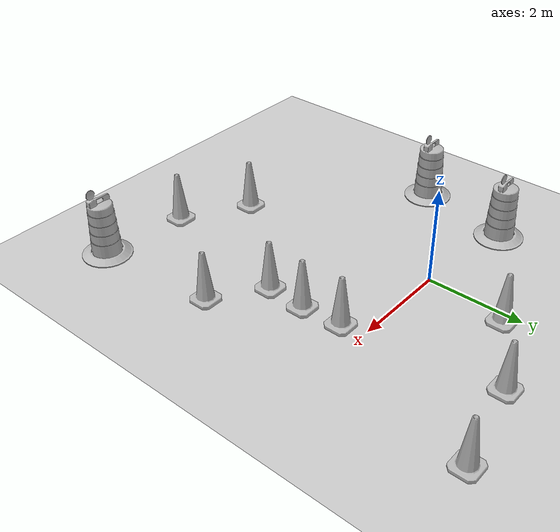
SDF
<sdf version="1.7">
 <world name="default">
  <light name="sun" type="directional">
   <pose>0 0 10 0 -0 0</pose>
   <diffuse>0.8 0.8 0.8 1</diffuse>
   <specular>0.2 0.2 0.2 1</specular>
   <attenuation>
    <range>1000</range>
    <constant>0.9</constant>
    <linear>0.01</linear>
    <quadratic>0.001</quadratic>
   </attenuation>
   <direction>-0.5 0.1 -0.9</direction>
   <spot><inner_angle>0</inner_angle><outer_angle>0</outer_angle><falloff>0</falloff></spot>
  </light>
  <model name="ground_plane">
   <static>1</static>
   <link name="link">
    <collision name="collision">
     <geometry><plane><normal>0 0 1</normal><size>100 100</size></plane></geometry>
     <surface><friction><ode><mu>100</mu><mu2>50</mu2></ode></friction></surface>
    </collision>
    <visual name="visual">
     <cast_shadows>0</cast_shadows>
     <geometry><plane><normal>0 0 1</normal><size>100 100</size></plane></geometry>
     <material>
      <script><uri>file://media/materials/scripts/gazebo.material</uri><name>Gazebo/Grey</name></script>
     </material>
    </visual>
   </link>
  </model>
  <gravity>0 0 -9.8</gravity>
  <magnetic_field>6e-06 2.3e-05 -4.2e-05</magnetic_field>
  <atmosphere type="adiabatic"/>
  <physics type="ode">
   <max_step_size>0.001</max_step_size>
   <real_time_factor>1</real_time_factor>
   <real_time_update_rate>1000</real_time_update_rate>
  </physics>
  <scene><ambient>0.4 0.4 0.4 1</ambient><background>0.7 0.7 0.7 1</background><shadows>1</shadows></scene>
  <audio><device>default</device></audio>
  <spherical_coordinates>
   <surface_model>EARTH_WGS84</surface_model>
   <latitude_deg>0</latitude_deg>
   <longitude_deg>0</longitude_deg>
   <elevation>0</elevation>
   <heading_deg>0</heading_deg>
  </spherical_coordinates>
  <model name="Construction Cone">
   <link name="link">
    <collision name="collision">
     <geometry>
      <mesh><scale>10 10 10</scale><uri>model://construction_cone/meshes/construction_cone.dae</uri></mesh>
     </geometry>
    </collision>
    <visual name="visual">
     <geometry>
      <mesh><scale>10 10 10</scale><uri>model://construction_cone/meshes/construction_cone.dae</uri></mesh>
     </geometry>
    </visual>
    <inertial>
     <inertia><ixx>1</ixx><ixy>0</ixy><ixz>0</ixz><iyy>1</iyy><iyz>0</iyz><izz>1</izz></inertia>
     <mass>1</mass>
    </inertial>
   </link>
   <pose>0.226153 1.70241 -8e-06 1e-06 -0 0</pose>
  </model>
  <model name="Construction Barrel">
   <link name="link">
    <inertial>
     <pose>0 0 0.4 0 -0 0</pose>
     <mass>500</mass>
     <inertia><ixx>51.2096</ixx><iyy>51.2096</iyy><izz>25</izz><ixy>0</ixy><ixz>0</ixz><iyz>0</iyz></inertia>
    </inertial>
    <collision name="collision">
     <geometry><mesh><uri>model://construction_barrel/meshes/construction_barrel.dae</uri></mesh></geometry>
    </collision>
    <visual name="visual">
     <geometry><mesh><uri>model://construction_barrel/meshes/construction_barrel.dae</uri></mesh></geometry>
    </visual>
   </link>
   <pose>-2.16022 0.29176 1e-06 3e-06 2e-06 -2.2e-05</pose>
  </model>
  <model name="Construction Barrel_0">
   <link name="link">
    <inertial>
     <pose>0 0 0.4 0 -0 0</pose>
     <mass>500</mass>
     <inertia><ixx>51.2096</ixx><iyy>51.2096</iyy><izz>25</izz><ixy>0</ixy><ixz>0</ixz><iyz>0</iyz></inertia>
    </inertial>
    <collision name="collision">
     <geometry><mesh><uri>model://construction_barrel/meshes/construction_barrel.dae</uri></mesh></geometry>
    </collision>
    <visual name="visual">
     <geometry><mesh><uri>model://construction_barrel/meshes/construction_barrel.dae</uri></mesh></geometry>
    </visual>
   </link>
   <pose>-2.59815 -1.74164 -1e-06 4e-06 -1e-06 -2.1e-05</pose>
  </model>
  <model name="Construction Cone_0">
   <link name="link">
    <collision name="collision">
     <geometry>
      <mesh><scale>10 10 10</scale><uri>model://construction_cone/meshes/construction_cone.dae</uri></mesh>
     </geometry>
    </collision>
    <visual name="visual">
     <geometry>
      <mesh><scale>10 10 10</scale><uri>model://construction_cone/meshes/construction_cone.dae</uri></mesh>
     </geometry>
    </visual>
    <inertial>
     <inertia><ixx>1</ixx><ixy>0</ixy><ixz>0</ixz><iyy>1</iyy><iyz>0</iyz><izz>1</izz></inertia>
     <mass>1</mass>
    </inertial>
   </link>
   <pose>1.72706 2.59962 -0 0 -0 0</pose>
  </model>
  <model name="Construction Cone_1">
   <link name="link">
    <collision name="collision">
     <geometry>
      <mesh><scale>10 10 10</scale><uri>model://construction_cone/meshes/construction_cone.dae</uri></mesh>
     </geometry>
    </collision>
    <visual name="visual">
     <geometry>
      <mesh><scale>10 10 10</scale><uri>model://construction_cone/meshes/construction_cone.dae</uri></mesh>
     </geometry>
    </visual>
    <inertial>
     <inertia><ixx>1</ixx><ixy>0</ixy><ixz>0</ixz><iyy>1</iyy><iyz>0</iyz><izz>1</izz></inertia>
     <mass>1</mass>
    </inertial>
   </link>
   <pose>3.50931 2.94809 -0 0 -0 0</pose>
  </model>
  <model name="Construction Cone_2">
   <link name="link">
    <collision name="collision">
     <geometry>
      <mesh><scale>10 10 10</scale><uri>model://construction_cone/meshes/construction_cone.dae</uri></mesh>
     </geometry>
    </collision>
    <visual name="visual">
     <geometry>
      <mesh><scale>10 10 10</scale><uri>model://construction_cone/meshes/construction_cone.dae</uri></mesh>
     </geometry>
    </visual>
    <inertial>
     <inertia><ixx>1</ixx><ixy>0</ixy><ixz>0</ixz><iyy>1</iyy><iyz>0</iyz><izz>1</izz></inertia>
     <mass>1</mass>
    </inertial>
   </link>
   <pose>2.19095 -2.16649 -0 0 -0 0</pose>
  </model>
  <model name="Construction Cone_3">
   <link name="link">
    <collision name="collision">
     <geometry>
      <mesh><scale>10 10 10</scale><uri>model://construction_cone/meshes/construction_cone.dae</uri></mesh>
     </geometry>
    </collision>
    <visual name="visual">
     <geometry>
      <mesh><scale>10 10 10</scale><uri>model://construction_cone/meshes/construction_cone.dae</uri></mesh>
     </geometry>
    </visual>
    <inertial>
     <inertia><ixx>1</ixx><ixy>0</ixy><ixz>0</ixz><iyy>1</iyy><iyz>0</iyz><izz>1</izz></inertia>
     <mass>1</mass>
    </inertial>
   </link>
   <pose>2.23424 -1.33051 -0 0 -0 0</pose>
  </model>
  <model name="Construction Cone_4">
   <link name="link">
    <collision name="collision">
     <geometry>
      <mesh><scale>10 10 10</scale><uri>model://construction_cone/meshes/construction_cone.dae</uri></mesh>
     </geometry>
    </collision>
    <visual name="visual">
     <geometry>
      <mesh><scale>10 10 10</scale><uri>model://construction_cone/meshes/construction_cone.dae</uri></mesh>
     </geometry>
    </visual>
    <inertial>
     <inertia><ixx>1</ixx><ixy>0</ixy><ixz>0</ixz><iyy>1</iyy><iyz>0</iyz><izz>1</izz></inertia>
     <mass>1</mass>
    </inertial>
   </link>
   <pose>2.17104 -0.48015 -4e-06 4e-06 -1e-06 0</pose>
  </model>
  <model name="Construction Cone_5">
   <link name="link">
    <collision name="collision">
     <geometry>
      <mesh><scale>10 10 10</scale><uri>model://construction_cone/meshes/construction_cone.dae</uri></mesh>
     </geometry>
    </collision>
    <visual name="visual">
     <geometry>
      <mesh><scale>10 10 10</scale><uri>model://construction_cone/meshes/construction_cone.dae</uri></mesh>
     </geometry>
    </visual>
    <inertial>
     <inertia><ixx>1</ixx><ixy>0</ixy><ixz>0</ixz><iyy>1</iyy><iyz>0</iyz><izz>1</izz></inertia>
     <mass>1</mass>
    </inertial>
   </link>
   <pose>0.283069 -4.45316 -0 0 -1e-06 0</pose>
  </model>
  <model name="Construction Cone_6">
   <link name="link">
    <collision name="collision">
     <geometry>
      <mesh><scale>10 10 10</scale><uri>model://construction_cone/meshes/construction_cone.dae</uri></mesh>
     </geometry>
    </collision>
    <visual name="visual">
     <geometry>
      <mesh><scale>10 10 10</scale><uri>model://construction_cone/meshes/construction_cone.dae</uri></mesh>
     </geometry>
    </visual>
    <inertial>
     <inertia><ixx>1</ixx><ixy>0</ixy><ixz>0</ixz><iyy>1</iyy><iyz>0</iyz><izz>1</izz></inertia>
     <mass>1</mass>
    </inertial>
   </link>
   <pose>1.61245 -5.25225 -1e-05 -1e-06 0 0</pose>
  </model>
  <model name="Construction Barrel_1">
   <link name="link">
    <inertial>
     <pose>0 0 0.4 0 -0 0</pose>
     <mass>500</mass>
     <inertia><ixx>51.2096</ixx><iyy>51.2096</iyy><izz>25</izz><ixy>0</ixy><ixz>0</ixz><iyz>0</iyz></inertia>
    </inertial>
    <collision name="collision">
     <geometry><mesh><uri>model://construction_barrel/meshes/construction_barrel.dae</uri></mesh></geometry>
    </collision>
    <visual name="visual">
     <geometry><mesh><uri>model://construction_barrel/meshes/construction_barrel.dae</uri></mesh></geometry>
    </visual>
   </link>
   <pose>3.42777 -5.46578 -1e-06 3e-06 1e-05 -7e-06</pose>
  </model>
  <model name="Construction Cone_7">
   <link name="link">
    <collision name="collision">
     <geometry>
      <mesh><scale>10 10 10</scale><uri>model://construction_cone/meshes/construction_cone.dae</uri></mesh>
     </geometry>
    </collision>
    <visual name="visual">
     <geometry>
      <mesh><scale>10 10 10</scale><uri>model://construction_cone/meshes/construction_cone.dae</uri></mesh>
     </geometry>
    </visual>
    <inertial>
     <inertia><ixx>1</ixx><ixy>0</ixy><ixz>0</ixz><iyy>1</iyy><iyz>0</iyz><izz>1</izz></inertia>
     <mass>1</mass>
    </inertial>
   </link>
   <pose>3.21198 -2.87093 -0 0 -1e-06 0</pose>
  </model>
 </world>
</sdf>
